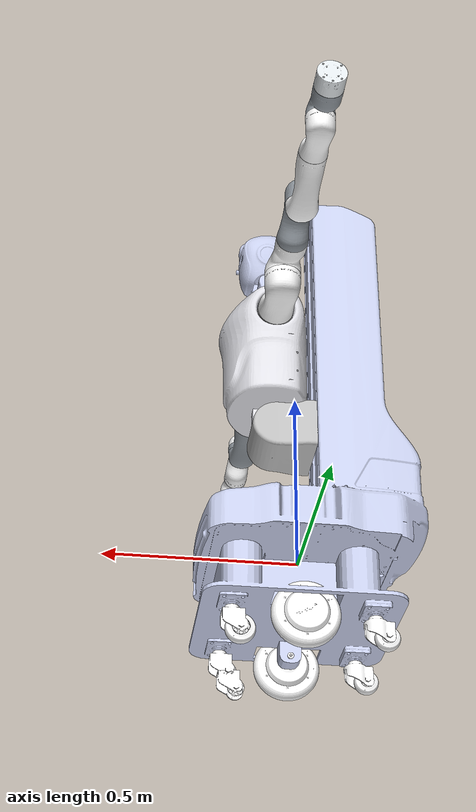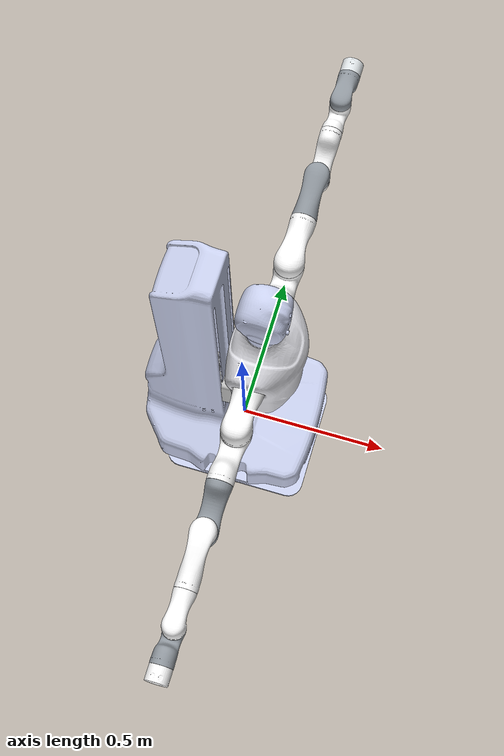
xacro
<?xml version="1.0"?>
<robot xmlns:xacro="http://www.ros.org/wiki/xacro" name="fujqr04_urdf">
    <xacro:arg name="initial_positions_file" default="initial_positions.yaml" />

    <!-- Import fujqr04_urdf urdf file -->
    <xacro:include filename="$(find tl_robot_description)/urdf/fujqr04_urdf.urdf" />

    <!-- Import control_xacro -->
    <xacro:include filename="fujqr04_urdf.ros2_control.xacro" />

    <xacro:fujqr04_urdf_ros2_control name="TLHardware" initial_positions_file="$(arg initial_positions_file)"/>

</robot>

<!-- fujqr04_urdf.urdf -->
<robot
  name="fujqr04_urdf">
      <mujoco>
    <compiler meshdir="package://tl_robot_description/meshes/composite_robot" discardvisual="false"/>
  </mujoco>
  <link
    name="base_link">
    <inertial>
      <origin
        xyz="-0.0585192454024194 -1.67637819496746E-05 0.151552337128435"
        rpy="0 0 0" />
      <mass
        value="26.647418791939" />
      <inertia
        ixx="0.595861553229968"
        ixy="-5.87175946958511E-05"
        ixz="0.00375746939189131"
        iyy="0.608863591294001"
        iyz="-1.57939781044652E-05"
        izz="0.501908866217119" />
    </inertial>
    <visual>
      <origin
        xyz="0 0 0"
        rpy="0 0 0" />
      <geometry>
        <mesh
          filename="package://tl_robot_description/meshes/composite_robot/base_link.STL" />
      </geometry>
      <material
        name="">
        <color
          rgba="0.792156862745098 0.819607843137255 0.933333333333333 1" />
      </material>
    </visual>
    <collision>
      <origin
        xyz="0 0 0"
        rpy="0 0 0" />
      <geometry>
        <mesh
          filename="package://tl_robot_description/meshes/composite_robot/base_link.STL" />
      </geometry>
    </collision>
  </link>
  <link
    name="right_wheel_link">
    <inertial>
      <origin
        xyz="-0.000904107370642615 0.000627773631885153 -0.00018469891110226"
        rpy="0 0 0" />
      <mass
        value="0.906065331403416" />
      <inertia
        ixx="0.00146490832006865"
        ixy="-2.68932350553715E-09"
        ixz="2.66391539023402E-08"
        iyy="0.00274396801108794"
        iyz="-2.65212662986043E-07"
        izz="0.00146498413434211" />
    </inertial>
    <visual>
      <origin
        xyz="0 0 0"
        rpy="0 0 0" />
      <geometry>
        <mesh
          filename="package://tl_robot_description/meshes/composite_robot/right_wheel_link.STL" />
      </geometry>
      <material
        name="">
        <color
          rgba="1 1 1 1" />
      </material>
    </visual>
    <collision>
      <origin
        xyz="0 0 0"
        rpy="0 0 0" />
      <geometry>
        <mesh
          filename="package://tl_robot_description/meshes/composite_robot/right_wheel_link.STL" />
      </geometry>
    </collision>
  </link>
  <joint
    name="right_wheel_joint"
    type="fixed">
    <origin
      xyz="0.00924308221084946 -0.163664282793204 -0.213500858738017"
      rpy="0 0 0" />
    <parent
      link="base_link" />
    <child
      link="right_wheel_link" />
    <axis
      xyz="0 1 0" />
  </joint>
  <link
    name="left_wheel_link">
    <inertial>
      <origin
        xyz="-1.23989030601512E-05 -0.000627774706009075 4.48483952431022E-06"
        rpy="0 0 0" />
      <mass
        value="0.906065281118617" />
      <inertia
        ixx="0.00146490692546974"
        ixy="4.36963444339904E-09"
        ixz="-2.46401910031467E-08"
        iyy="0.00274396788517508"
        iyz="2.65187799226424E-07"
        izz="0.00146498540258475" />
    </inertial>
    <visual>
      <origin
        xyz="0 0 0"
        rpy="0 0 0" />
      <geometry>
        <mesh
          filename="package://tl_robot_description/meshes/composite_robot/left_wheel_link.STL" />
      </geometry>
      <material
        name="">
        <color
          rgba="1 1 1 1" />
      </material>
    </visual>
    <collision>
      <origin
        xyz="0 0 0"
        rpy="0 0 0" />
      <geometry>
        <mesh
          filename="package://tl_robot_description/meshes/composite_robot/left_wheel_link.STL" />
      </geometry>
    </collision>
  </link>
  <joint
    name="left_wheel_joint"
    type="fixed">
    <origin
      xyz="0.00924308221084946 0.163635717206786 -0.213500858738017"
      rpy="0 0 0" />
    <parent
      link="base_link" />
    <child
      link="left_wheel_link" />
    <axis
      xyz="0 -1 0" />
  </joint>
  <link
    name="r_wheel1_link">
    <inertial>
      <origin
        xyz="-0.0113137247197726 -0.000218433447863375 -0.0261993099863237"
        rpy="0 0 0" />
      <mass
        value="0.0428499821293494" />
      <inertia
        ixx="1.52834000745033E-05"
        ixy="-3.4950707316608E-09"
        ixz="-1.01718859528849E-06"
        iyy="1.23944108861041E-05"
        iyz="7.98827275350381E-11"
        izz="1.58388917660375E-05" />
    </inertial>
    <visual>
      <origin
        xyz="0 0 0"
        rpy="0 0 0" />
      <geometry>
        <mesh
          filename="package://tl_robot_description/meshes/composite_robot/r_wheel1_link.STL" />
      </geometry>
      <material
        name="">
        <color
          rgba="1 1 1 1" />
      </material>
    </visual>
    <collision>
      <origin
        xyz="0 0 0"
        rpy="0 0 0" />
      <geometry>
        <mesh
          filename="package://tl_robot_description/meshes/composite_robot/r_wheel1_link.STL" />
      </geometry>
    </collision>
  </link>
  <joint
    name="r_wheel1_joint"
    type="fixed">
    <origin
      xyz="0.183794709280946 -0.135014282793186 -0.203549999999998"
      rpy="0 0 0" />
    <parent
      link="base_link" />
    <child
      link="r_wheel1_link" />
    <axis
      xyz="0 0 1" />
    <limit
      lower="-3.14"
      upper="3.14"
      effort="10"
      velocity="10" />
  </joint>
  <link
    name="right_wheel1_link">
    <inertial>
      <origin
        xyz="7.80906843078633E-07 4.3178541853095E-09 -2.0320507282956E-06"
        rpy="0 0 0" />
      <mass
        value="0.110487149626156" />
      <inertia
        ixx="4.38934678556913E-05"
        ixy="-4.47028176514792E-11"
        ixz="1.13193512494371E-08"
        iyy="7.47299398015464E-05"
        iyz="-4.56497658987084E-11"
        izz="4.38712937378626E-05" />
    </inertial>
    <visual>
      <origin
        xyz="0 0 0"
        rpy="0 0 0" />
      <geometry>
        <mesh
          filename="package://tl_robot_description/meshes/composite_robot/right_wheel1_link.STL" />
      </geometry>
      <material
        name="">
        <color
          rgba="1 1 1 1" />
      </material>
    </visual>
    <collision>
      <origin
        xyz="0 0 0"
        rpy="0 0 0" />
      <geometry>
        <mesh
          filename="package://tl_robot_description/meshes/composite_robot/right_wheel1_link.STL" />
      </geometry>
    </collision>
  </link>
  <joint
    name="right_wheel1_joint"
    type="fixed">
    <origin
      xyz="-0.0205 0 -0.0432"
      rpy="0 0 0" />
    <parent
      link="r_wheel1_link" />
    <child
      link="right_wheel1_link" />
    <axis
      xyz="0 -1 0" />
  </joint>
  <link
    name="r_wheel2_link">
    <inertial>
      <origin
        xyz="-0.014027793887006 -0.000231594026883664 -0.0222607688915356"
        rpy="0 0 0" />
      <mass
        value="0.0459567939136361" />
      <inertia
        ixx="1.95859406220218E-05"
        ixy="8.47128518178421E-09"
        ixz="-1.86482178866713E-06"
        iyy="1.6680216642778E-05"
        iyz="2.39089350752865E-09"
        izz="2.32978369433128E-05" />
    </inertial>
    <visual>
      <origin
        xyz="0 0 0"
        rpy="0 0 0" />
      <geometry>
        <mesh
          filename="package://tl_robot_description/meshes/composite_robot/r_wheel2_link.STL" />
      </geometry>
      <material
        name="">
        <color
          rgba="1 1 1 1" />
      </material>
    </visual>
    <collision>
      <origin
        xyz="0 0 0"
        rpy="0 0 0" />
      <geometry>
        <mesh
          filename="package://tl_robot_description/meshes/composite_robot/r_wheel2_link.STL" />
      </geometry>
    </collision>
  </link>
  <joint
    name="r_wheel2_joint"
    type="fixed">
    <origin
      xyz="-0.166205254244258 -0.135013949211622 -0.213250000000002"
      rpy="0 0 0" />
    <parent
      link="base_link" />
    <child
      link="r_wheel2_link" />
    <axis
      xyz="0 0 1" />
    <limit
      lower="-3.14"
      upper="3.14"
      effort="10"
      velocity="10" />
  </joint>
  <link
    name="right_wheel2_link">
    <inertial>
      <origin
        xyz="-1.20284292748352E-07 7.29827309697839E-12 2.90073505299082E-07"
        rpy="0 0 0" />
      <mass
        value="0.0867602671682201" />
      <inertia
        ixx="2.5469835297065E-05"
        ixy="1.42130721310809E-10"
        ixz="7.40808742693022E-09"
        iyy="3.80488317798568E-05"
        iyz="5.89476737928406E-11"
        izz="2.54550425639356E-05" />
    </inertial>
    <visual>
      <origin
        xyz="0 0 0"
        rpy="0 0 0" />
      <geometry>
        <mesh
          filename="package://tl_robot_description/meshes/composite_robot/right_wheel2_link.STL" />
      </geometry>
      <material
        name="">
        <color
          rgba="1 1 1 1" />
      </material>
    </visual>
    <collision>
      <origin
        xyz="0 0 0"
        rpy="0 0 0" />
      <geometry>
        <mesh
          filename="package://tl_robot_description/meshes/composite_robot/right_wheel2_link.STL" />
      </geometry>
    </collision>
  </link>
  <joint
    name="right_wheel2_joint"
    type="fixed">
    <origin
      xyz="-0.0265 0 -0.0395"
      rpy="0 0.00129839823615998 0" />
    <parent
      link="r_wheel2_link" />
    <child
      link="right_wheel2_link" />
    <axis
      xyz="0 -1 0" />
  </joint>
  <link
    name="l_wheel1_link">
    <inertial>
      <origin
        xyz="-0.0113137249835045 -0.000218433396062562 -0.0261993098242906"
        rpy="0 0 0" />
      <mass
        value="0.0428499824901452" />
      <inertia
        ixx="1.52834000799942E-05"
        ixy="-3.49504906661967E-09"
        ixz="-1.01718864900662E-06"
        iyy="1.23944110236126E-05"
        iyz="7.98913017200971E-11"
        izz="1.5838891901709E-05" />
    </inertial>
    <visual>
      <origin
        xyz="0 0 0"
        rpy="0 0 0" />
      <geometry>
        <mesh
          filename="package://tl_robot_description/meshes/composite_robot/l_wheel1_link.STL" />
      </geometry>
      <material
        name="">
        <color
          rgba="1 1 1 1" />
      </material>
    </visual>
    <collision>
      <origin
        xyz="0 0 0"
        rpy="0 0 0" />
      <geometry>
        <mesh
          filename="package://tl_robot_description/meshes/composite_robot/l_wheel1_link.STL" />
      </geometry>
    </collision>
  </link>
  <joint
    name="l_wheel1_joint"
    type="fixed">
    <origin
      xyz="0.183794709280931 0.1349857172068 -0.203549999999998"
      rpy="0 0 0" />
    <parent
      link="base_link" />
    <child
      link="l_wheel1_link" />
    <axis
      xyz="0 0 1" />
    <limit
      lower="-3.14"
      upper="3.14"
      effort="10"
      velocity="10" />
  </joint>
  <link
    name="left_wheel1_link">
    <inertial>
      <origin
        xyz="7.80906836417294E-07 4.31786126298128E-09 -2.03205072363266E-06"
        rpy="0 0 0" />
      <mass
        value="0.11048714962617" />
      <inertia
        ixx="4.3893467855692E-05"
        ixy="-4.47028054565614E-11"
        ixz="1.13193512583468E-08"
        iyy="7.47299398015534E-05"
        iyz="-4.564979020841E-11"
        izz="4.38712937378724E-05" />
    </inertial>
    <visual>
      <origin
        xyz="0 0 0"
        rpy="0 0 0" />
      <geometry>
        <mesh
          filename="package://tl_robot_description/meshes/composite_robot/left_wheel1_link.STL" />
      </geometry>
      <material
        name="">
        <color
          rgba="1 1 1 1" />
      </material>
    </visual>
    <collision>
      <origin
        xyz="0 0 0"
        rpy="0 0 0" />
      <geometry>
        <mesh
          filename="package://tl_robot_description/meshes/composite_robot/left_wheel1_link.STL" />
      </geometry>
    </collision>
  </link>
  <joint
    name="left_wheel1_joint"
    type="fixed">
    <origin
      xyz="-0.0205 0 -0.0432"
      rpy="0 0 0" />
    <parent
      link="l_wheel1_link" />
    <child
      link="left_wheel1_link" />
    <axis
      xyz="0 -1 0" />
  </joint>
  <link
    name="l_wheel2_link">
    <inertial>
      <origin
        xyz="-0.0140277943962059 -0.000231594175131911 -0.0222607696617747"
        rpy="0 0 0" />
      <mass
        value="0.0459567928027875" />
      <inertia
        ixx="1.95859408341884E-05"
        ixy="8.47139771002924E-09"
        ixz="-1.86482176681896E-06"
        iyy="1.66799725155158E-05"
        iyz="2.39079659159164E-09"
        izz="2.32975929149454E-05" />
    </inertial>
    <visual>
      <origin
        xyz="0 0 0"
        rpy="0 0 0" />
      <geometry>
        <mesh
          filename="package://tl_robot_description/meshes/composite_robot/l_wheel2_link.STL" />
      </geometry>
      <material
        name="">
        <color
          rgba="1 1 1 1" />
      </material>
    </visual>
    <collision>
      <origin
        xyz="0 0 0"
        rpy="0 0 0" />
      <geometry>
        <mesh
          filename="package://tl_robot_description/meshes/composite_robot/l_wheel2_link.STL" />
      </geometry>
    </collision>
  </link>
  <joint
    name="l_wheel2_joint"
    type="fixed">
    <origin
      xyz="-0.16620529071915 0.134985717206844 -0.213250000000002"
      rpy="0 0 0" />
    <parent
      link="base_link" />
    <child
      link="l_wheel2_link" />
    <axis
      xyz="0 0 1" />
    <limit
      lower="-3.14"
      upper="3.14"
      effort="10"
      velocity="10" />
  </joint>
  <link
    name="left_wheel2_link">
    <inertial>
      <origin
        xyz="-1.20284182059116E-07 7.40127403808799E-12 2.90073330549978E-07"
        rpy="0 0 0" />
      <mass
        value="0.086760267169114" />
      <inertia
        ixx="2.54698352974173E-05"
        ixy="1.42130617032467E-10"
        ixz="7.40808758172731E-09"
        iyy="3.80488317802008E-05"
        iyz="5.89478356885049E-11"
        izz="2.54550425641342E-05" />
    </inertial>
    <visual>
      <origin
        xyz="0 0 0"
        rpy="0 0 0" />
      <geometry>
        <mesh
          filename="package://tl_robot_description/meshes/composite_robot/left_wheel2_link.STL" />
      </geometry>
      <material
        name="">
        <color
          rgba="1 1 1 1" />
      </material>
    </visual>
    <collision>
      <origin
        xyz="0 0 0"
        rpy="0 0 0" />
      <geometry>
        <mesh
          filename="package://tl_robot_description/meshes/composite_robot/left_wheel2_link.STL" />
      </geometry>
    </collision>
  </link>
  <joint
    name="left_wheel2_joint"
    type="fixed">
    <origin
      xyz="-0.0265 0 -0.0395"
      rpy="0 0.00129839823615998 0" />
    <parent
      link="l_wheel2_link" />
    <child
      link="left_wheel2_link" />
    <axis
      xyz="0 -1 0" />
  </joint>
  <link
    name="torso_lift_link">
    <inertial>
      <origin
        xyz="0.0409090311775983 -0.000698260159682246 -0.0258765557154715"
        rpy="0 0 0" />
      <mass
        value="6.3762771278756" />
      <inertia
        ixx="0.012263357497778"
        ixy="2.00688147950621E-05"
        ixz="0.000151532355542095"
        iyy="0.0106756003458638"
        iyz="-1.14751453206824E-06"
        izz="0.0121203657273915" />
    </inertial>
    <visual>
      <origin
        xyz="0 0 0"
        rpy="0 0 0" />
      <geometry>
        <mesh
          filename="package://tl_robot_description/meshes/composite_robot/torso_lift_link.STL" />
      </geometry>
      <material
        name="">
        <color
          rgba="0.752941176470588 0.752941176470588 0.752941176470588 1" />
      </material>
    </visual>
    <collision>
      <origin
        xyz="0 0 0"
        rpy="0 0 0" />
      <geometry>
        <mesh
          filename="package://tl_robot_description/meshes/composite_robot/torso_lift_link.STL" />
      </geometry>
    </collision>
  </link>
  <joint
    name="torso_lift_joint"
    type="fixed">
    <origin
      xyz="-0.106875442291216 -1.42828144376606E-05 0.417130280560492"
      rpy="0 0 0" />
    <parent
      link="base_link" />
    <child
      link="torso_lift_link" />
    <axis
      xyz="0 0 1" />
    <limit
      lower="-0.1"
      upper="0.6"
      effort="0"
      velocity="0" />
  </joint>
  <link
    name="body_link">
    <inertial>
      <origin
        xyz="0.0117686385303164 -0.00077485019077872 0.188689891466574"
        rpy="0 0 0" />
      <mass
        value="5.0880715856155" />
      <inertia
        ixx="0.0310576585146269"
        ixy="-6.40426236252368E-05"
        ixz="-0.000293448162445969"
        iyy="0.026864645536454"
        iyz="-6.32957075559917E-05"
        izz="0.0195650398453874" />
    </inertial>
    <visual>
      <origin
        xyz="0 0 0"
        rpy="0 0 0" />
      <geometry>
        <mesh
          filename="package://tl_robot_description/meshes/composite_robot/body_link.STL" />
      </geometry>
      <material
        name="">
        <color
          rgba="0.890196078431372 0.890196078431372 0.913725490196078 1" />
      </material>
    </visual>
    <collision>
      <origin
        xyz="0 0 0"
        rpy="0 0 0" />
      <geometry>
        <mesh
          filename="package://tl_robot_description/meshes/composite_robot/body_link.STL" />
      </geometry>
    </collision>
  </link>
  <joint
    name="body_joint"
    type="fixed">
    <origin
      xyz="0.162500000024063 0 -0.0359999999987211"
      rpy="0 0 0" />
    <parent
      link="torso_lift_link" />
    <child
      link="body_link" />
    <axis
      xyz="0 1 0" />
    <limit
      lower="0"
      upper="0.61"
      effort="0"
      velocity="0" />
  </joint>
  <link
    name="right_tl_robot_link0">
    <inertial>
      <origin
        xyz="0.00192374644250437 -6.92485170161738E-06 0.0385486940392312"
        rpy="0 0 0" />
      <mass
        value="0.716845535665842" />
      <inertia
        ixx="0.00154416101417334"
        ixy="-1.11621426436659E-08"
        ixz="4.19538312749632E-05"
        iyy="0.00141876540736504"
        iyz="8.77246464212948E-10"
        izz="0.00181390795283312" />
    </inertial>
    <visual>
      <origin
        xyz="0 0 0"
        rpy="0 0 0" />
      <geometry>
        <mesh
          filename="package://tl_robot_description/meshes/composite_robot/right_tl_robot_link0.STL" />
      </geometry>
      <material
        name="">
        <color
          rgba="1 1 1 1" />
      </material>
    </visual>
    <collision>
      <origin
        xyz="0 0 0"
        rpy="0 0 0" />
      <geometry>
        <mesh
          filename="package://tl_robot_description/meshes/composite_robot/right_tl_robot_link0.STL" />
      </geometry>
    </collision>
  </link>
  <joint
    name="right_tl_robot_joint0"
    type="fixed">
    <origin
      xyz="0.0150727614410257 -0.0149999999654346 0.314999999998884"
      rpy="-1.57079632679446 0 -3.14159265358979" />
    <parent
      link="body_link" />
    <child
      link="right_tl_robot_link0" />
    <axis
      xyz="0 0 0" />
  </joint>
  <link
    name="right_tl_robot_link1">
    <inertial>
      <origin
        xyz="-6.06536260672197E-06 -0.0151213126560721 0.0704991532800994"
        rpy="0 0 0" />
      <mass
        value="0.518526718804213" />
      <inertia
        ixx="0.00167109666935009"
        ixy="1.57717042537927E-07"
        ixz="-1.53799170137836E-07"
        iyy="0.00175701058327343"
        iyz="0.000263609645526818"
        izz="0.000784474514309351" />
    </inertial>
    <visual>
      <origin
        xyz="0 0 0"
        rpy="0 0 0" />
      <geometry>
        <mesh
          filename="package://tl_robot_description/meshes/composite_robot/right_tl_robot_link1.STL" />
      </geometry>
      <material
        name="">
        <color
          rgba="1 1 1 1" />
      </material>
    </visual>
    <collision>
      <origin
        xyz="0 0 0"
        rpy="0 0 0" />
      <geometry>
        <mesh
          filename="package://tl_robot_description/meshes/composite_robot/right_tl_robot_link1.STL" />
      </geometry>
    </collision>
  </link>
  <joint
    name="right_tl_robot_joint1"
    type="revolute">
    <origin
      xyz="-0.000927238572212885 0 0.131499999999995"
      rpy="0 0 0" />
    <parent
      link="right_tl_robot_link0" />
    <child
      link="right_tl_robot_link1" />
    <axis
      xyz="0 0 1" />
    <limit
      lower="-3.14"
      upper="3.14"
      effort="10"
      velocity="10" />
  </joint>
  <link
    name="right_tl_robot_link2">
    <inertial>
      <origin
        xyz="-1.26960580512647E-05 -0.0664217640319343 0.0045783349860955"
        rpy="0 0 0" />
      <mass
        value="0.458838702372525" />
      <inertia
        ixx="0.00164318340226464"
        ixy="-2.72687121461086E-07"
        ixz="-7.69957161933476E-08"
        iyy="0.000558837881514008"
        iyz="-0.000282993845642125"
        izz="0.00171225909772861" />
    </inertial>
    <visual>
      <origin
        xyz="0 0 0"
        rpy="0 0 0" />
      <geometry>
        <mesh
          filename="package://tl_robot_description/meshes/composite_robot/right_tl_robot_link2.STL" />
      </geometry>
      <material
        name="">
        <color
          rgba="1 1 1 1" />
      </material>
    </visual>
    <collision>
      <origin
        xyz="0 0 0"
        rpy="0 0 0" />
      <geometry>
        <mesh
          filename="package://tl_robot_description/meshes/composite_robot/right_tl_robot_link2.STL" />
      </geometry>
    </collision>
  </link>
  <joint
    name="right_tl_robot_joint2"
    type="revolute">
    <origin
      xyz="0 0.0159999999988272 0.131500000000007"
      rpy="-1.57079632679444 0 0" />
    <parent
      link="right_tl_robot_link1" />
    <child
      link="right_tl_robot_link2" />
    <axis
      xyz="0 0 1" />
    <limit
      lower="-2.35619449"
      upper="2.35619449"
      effort="10"
      velocity="10" />
  </joint>
  <link
    name="right_tl_robot_link3">
    <inertial>
      <origin
        xyz="5.33178425365932E-06 0.0166055350939187 0.0826903765904404"
        rpy="0 0 0" />
      <mass
        value="0.463627232587183" />
      <inertia
        ixx="0.00162345325371039"
        ixy="-7.0877843623357E-08"
        ixz="-2.65531657543152E-07"
        iyy="0.00168226141881407"
        iyz="-0.000238494599529547"
        izz="0.000463821892824167" />
    </inertial>
    <visual>
      <origin
        xyz="0 0 0"
        rpy="0 0 0" />
      <geometry>
        <mesh
          filename="package://tl_robot_description/meshes/composite_robot/right_tl_robot_link3.STL" />
      </geometry>
      <material
        name="">
        <color
          rgba="0.568627450980392 0.596078431372549 0.623529411764706 1" />
      </material>
    </visual>
    <collision>
      <origin
        xyz="0 0 0"
        rpy="0 0 0" />
      <geometry>
        <mesh
          filename="package://tl_robot_description/meshes/composite_robot/right_tl_robot_link3.STL" />
      </geometry>
    </collision>
  </link>
  <joint
    name="right_tl_robot_joint3"
    type="revolute">
    <origin
      xyz="0 -0.167500000000009 -0.0159999999999649"
      rpy="1.57079632679491 0 0" />
    <parent
      link="right_tl_robot_link2" />
    <child
      link="right_tl_robot_link3" />
    <axis
      xyz="0 0 1" />
    <limit
      lower="-3.14"
      upper="3.14"
      effort="10"
      velocity="10" />
  </joint>
  <link
    name="right_tl_robot_link4">
    <inertial>
      <origin
        xyz="2.76607595806055E-06 0.0694960785437674 0.00637378741975958"
        rpy="0 0 0" />
      <mass
        value="0.396498504487939" />
      <inertia
        ixx="0.0013749737283313"
        ixy="7.70357106087923E-08"
        ixz="2.54768454522589E-08"
        iyy="0.000357925344418066"
        iyz="0.00021175966786872"
        izz="0.00141757706980178" />
    </inertial>
    <visual>
      <origin
        xyz="0 0 0"
        rpy="0 0 0" />
      <geometry>
        <mesh
          filename="package://tl_robot_description/meshes/composite_robot/right_tl_robot_link4.STL" />
      </geometry>
      <material
        name="">
        <color
          rgba="1 1 1 1" />
      </material>
    </visual>
    <collision>
      <origin
        xyz="0 0 0"
        rpy="0 0 0" />
      <geometry>
        <mesh
          filename="package://tl_robot_description/meshes/composite_robot/right_tl_robot_link4.STL" />
      </geometry>
    </collision>
  </link>
  <joint
    name="right_tl_robot_joint4"
    type="revolute">
    <origin
      xyz="0 -0.013500000000213 0.153000000000002"
      rpy="1.57079632679489 0 0" />
    <parent
      link="right_tl_robot_link3" />
    <child
      link="right_tl_robot_link4" />
    <axis
      xyz="0 0 -1" />
    <limit
      lower="-2.35619449"
      upper="2.35619449"
      effort="10"
      velocity="10" />
  </joint>
  <link
    name="right_tl_robot_link5">
    <inertial>
      <origin
        xyz="-3.40926285069543E-06 -0.0133244789571756 0.0587132278005724"
        rpy="0 0 0" />
      <mass
        value="0.244288838305961" />
      <inertia
        ixx="0.000507361498650564"
        ixy="3.14090661307379E-08"
        ixz="-1.10052154309203E-07"
        iyy="0.000522024118241343"
        iyz="8.9412696191389E-05"
        izz="0.000202971055876174" />
    </inertial>
    <visual>
      <origin
        xyz="0 0 0"
        rpy="0 0 0" />
      <geometry>
        <mesh
          filename="package://tl_robot_description/meshes/composite_robot/right_tl_robot_link5.STL" />
      </geometry>
      <material
        name="">
        <color
          rgba="1 1 1 1" />
      </material>
    </visual>
    <collision>
      <origin
        xyz="0 0 0"
        rpy="0 0 0" />
      <geometry>
        <mesh
          filename="package://tl_robot_description/meshes/composite_robot/right_tl_robot_link5.STL" />
      </geometry>
    </collision>
  </link>
  <joint
    name="right_tl_robot_joint5"
    type="revolute">
    <origin
      xyz="0 0.17449999999996 -0.0135000000000172"
      rpy="-1.57079632679549 0 0" />
    <parent
      link="right_tl_robot_link4" />
    <child
      link="right_tl_robot_link5" />
    <axis
      xyz="0 0 1" />
    <limit
      lower="-3.14"
      upper="3.14"
      effort="10"
      velocity="10" />
  </joint>
  <link
    name="right_tl_robot_link6">
    <inertial>
      <origin
        xyz="-1.40320353185786E-05 -0.0434236898121723 0.000526798770660086"
        rpy="0 0 0" />
      <mass
        value="0.248665741580466" />
      <inertia
        ixx="0.000435366365641092"
        ixy="1.02578029044756E-07"
        ixz="3.83958961579293E-08"
        iyy="0.000223309836077594"
        iyz="-9.15144352365045E-05"
        izz="0.000440491062716011" />
    </inertial>
    <visual>
      <origin
        xyz="0 0 0"
        rpy="0 0 0" />
      <geometry>
        <mesh
          filename="package://tl_robot_description/meshes/composite_robot/right_tl_robot_link6.STL" />
      </geometry>
      <material
        name="">
        <color
          rgba="0.568627450980392 0.596078431372549 0.623529411764706 1" />
      </material>
    </visual>
    <collision>
      <origin
        xyz="0 0 0"
        rpy="0 0 0" />
      <geometry>
        <mesh
          filename="package://tl_robot_description/meshes/composite_robot/right_tl_robot_link6.STL" />
      </geometry>
    </collision>
  </link>
  <joint
    name="right_tl_robot_joint6"
    type="revolute">
    <origin
      xyz="0 0.0145000000018278 0.105000000000001"
      rpy="-1.57079632679431 0 0" />
    <parent
      link="right_tl_robot_link5" />
    <child
      link="right_tl_robot_link6" />
    <axis
      xyz="0 0 1" />
    <limit
      lower="-2.35619449"
      upper="2.35619449"
      effort="10"
      velocity="10" />
  </joint>
  <link
    name="right_tl_robot_link7">
    <inertial>
      <origin
        xyz="-4.26976566042514E-06 -9.34423822174235E-05 0.0269658756305569"
        rpy="0 0 0" />
      <mass
        value="0.217904444638026" />
      <inertia
        ixx="0.000132895370549979"
        ixy="-2.07531992122267E-08"
        ixz="9.78348685333675E-10"
        iyy="0.000131821662401355"
        iyz="6.36865291789532E-09"
        izz="0.000178910519063227" />
    </inertial>
    <visual>
      <origin
        xyz="0 0 0"
        rpy="0 0 0" />
      <geometry>
        <mesh
          filename="package://tl_robot_description/meshes/composite_robot/right_tl_robot_link7.STL" />
      </geometry>
      <material
        name="">
        <color
          rgba="1 1 1 1" />
      </material>
    </visual>
    <collision>
      <origin
        xyz="0 0 0"
        rpy="0 0 0" />
      <geometry>
        <mesh
          filename="package://tl_robot_description/meshes/composite_robot/right_tl_robot_link7.STL" />
      </geometry>
    </collision>
  </link>
  <joint
    name="right_tl_robot_joint7"
    type="revolute">
    <origin
      xyz="0 -0.114500000000033 -0.0144999999996767"
      rpy="1.57079632679452 0 0" />
    <parent
      link="right_tl_robot_link6" />
    <child
      link="right_tl_robot_link7" />
    <axis
      xyz="0 0 1" />
    <limit
      lower="-3.14"
      upper="3.14"
      effort="10"
      velocity="10" />
  </joint>
  <link
    name="left_tl_robot_link0">
    <inertial>
      <origin
        xyz="0.00192374642958909 -6.92485170095125E-06 0.0385486940394267"
        rpy="0 0 0" />
      <mass
        value="0.716845535665837" />
      <inertia
        ixx="0.00154416101417348"
        ixy="-1.11621436063746E-08"
        ixz="4.19538312750026E-05"
        iyy="0.0014187654073648"
        iyz="8.77246449852576E-10"
        izz="0.00181390795283298" />
    </inertial>
    <visual>
      <origin
        xyz="0 0 0"
        rpy="0 0 0" />
      <geometry>
        <mesh
          filename="package://tl_robot_description/meshes/composite_robot/left_tl_robot_link0.STL" />
      </geometry>
      <material
        name="">
        <color
          rgba="0.698039215686274 0.698039215686274 0.698039215686274 1" />
      </material>
    </visual>
    <collision>
      <origin
        xyz="0 0 0"
        rpy="0 0 0" />
      <geometry>
        <mesh
          filename="package://tl_robot_description/meshes/composite_robot/left_tl_robot_link0.STL" />
      </geometry>
    </collision>
  </link>
  <joint
    name="left_tl_robot_joint0"
    type="fixed">
    <origin
      xyz="0.0150727614277847 0.0149999999999999 0.315"
      rpy="1.5707963267949 0 3.14159265358979" />
    <parent
      link="body_link" />
    <child
      link="left_tl_robot_link0" />
    <axis
      xyz="0 0 0" />
  </joint>
  <link
    name="left_tl_robot_link1">
    <inertial>
      <origin
        xyz="-3.22744538816533E-06 -0.0151241394602863 0.0705018024712039"
        rpy="0 0 0" />
      <mass
        value="0.518479296797124" />
      <inertia
        ixx="0.00167109420268885"
        ixy="1.55942416759266E-07"
        ixz="-1.54779125210919E-07"
        iyy="0.0017570055786797"
        iyz="0.000263610612968579"
        izz="0.000784478984496201" />
    </inertial>
    <visual>
      <origin
        xyz="0 0 0"
        rpy="0 0 0" />
      <geometry>
        <mesh
          filename="package://tl_robot_description/meshes/composite_robot/left_tl_robot_link1.STL" />
      </geometry>
      <material
        name="">
        <color
          rgba="1 1 1 1" />
      </material>
    </visual>
    <collision>
      <origin
        xyz="0 0 0"
        rpy="0 0 0" />
      <geometry>
        <mesh
          filename="package://tl_robot_description/meshes/composite_robot/left_tl_robot_link1.STL" />
      </geometry>
    </collision>
  </link>
  <joint
    name="left_tl_robot_joint1"
    type="revolute">
    <origin
      xyz="-0.000927238572212885 0 0.131499999999994"
      rpy="0 0 0" />
    <parent
      link="left_tl_robot_link0" />
    <child
      link="left_tl_robot_link1" />
    <axis
      xyz="0 0 1" />
    <limit
      lower="-3.14"
      upper="3.14"
      effort="10"
      velocity="10" />
  </joint>
  <link
    name="left_tl_robot_link2">
    <inertial>
      <origin
        xyz="-1.26981341808108E-05 -0.0664217615872392 0.00457834248595579"
        rpy="0 0 0" />
      <mass
        value="0.458838559078682" />
      <inertia
        ixx="0.00164318333342256"
        ixy="-2.72673631358784E-07"
        ixz="-7.69567017167403E-08"
        iyy="0.000558837975084229"
        iyz="-0.000282993807946962"
        izz="0.00171225917790595" />
    </inertial>
    <visual>
      <origin
        xyz="0 0 0"
        rpy="0 0 0" />
      <geometry>
        <mesh
          filename="package://tl_robot_description/meshes/composite_robot/left_tl_robot_link2.STL" />
      </geometry>
      <material
        name="">
        <color
          rgba="1 1 1 1" />
      </material>
    </visual>
    <collision>
      <origin
        xyz="0 0 0"
        rpy="0 0 0" />
      <geometry>
        <mesh
          filename="package://tl_robot_description/meshes/composite_robot/left_tl_robot_link2.STL" />
      </geometry>
    </collision>
  </link>
  <joint
    name="left_tl_robot_joint2"
    type="revolute">
    <origin
      xyz="0 0.0159999999988854 0.1315"
      rpy="-1.57079632679488 0 0" />
    <parent
      link="left_tl_robot_link1" />
    <child
      link="left_tl_robot_link2" />
    <axis
      xyz="0 0 1" />
    <limit
      lower="-2.35619449"
      upper="2.35619449"
      effort="10"
      velocity="10" />
  </joint>
  <link
    name="left_tl_robot_link3">
    <inertial>
      <origin
        xyz="5.34525665640828E-06 0.0166055217931906 0.0826903501113631"
        rpy="0 0 0" />
      <mass
        value="0.463626862441133" />
      <inertia
        ixx="0.00162345280531544"
        ixy="-7.09990185599955E-08"
        ixz="-2.65595087142102E-07"
        iyy="0.0016822612104723"
        iyz="-0.000238494378094532"
        izz="0.000463821764240809" />
    </inertial>
    <visual>
      <origin
        xyz="0 0 0"
        rpy="0 0 0" />
      <geometry>
        <mesh
          filename="package://tl_robot_description/meshes/composite_robot/left_tl_robot_link3.STL" />
      </geometry>
      <material
        name="">
        <color
          rgba="0.568627450980392 0.596078431372549 0.623529411764706 1" />
      </material>
    </visual>
    <collision>
      <origin
        xyz="0 0 0"
        rpy="0 0 0" />
      <geometry>
        <mesh
          filename="package://tl_robot_description/meshes/composite_robot/left_tl_robot_link3.STL" />
      </geometry>
    </collision>
  </link>
  <joint
    name="left_tl_robot_joint3"
    type="revolute">
    <origin
      xyz="0 -0.167500000000009 -0.0159999999998925"
      rpy="1.57079632679491 0 0" />
    <parent
      link="left_tl_robot_link2" />
    <child
      link="left_tl_robot_link3" />
    <axis
      xyz="0 0 1" />
    <limit
      lower="-3.14"
      upper="3.14"
      effort="10"
      velocity="10" />
  </joint>
  <link
    name="left_tl_robot_link4">
    <inertial>
      <origin
        xyz="2.77499371681422E-06 0.0694960701165344 0.00637378176105474"
        rpy="0 0 0" />
      <mass
        value="0.396498467935782" />
      <inertia
        ixx="0.00137497369985905"
        ixy="7.70456070168299E-08"
        ixz="2.53782058959786E-08"
        iyy="0.000357925307856412"
        iyz="0.000211759729780307"
        izz="0.00141757709378062" />
    </inertial>
    <visual>
      <origin
        xyz="0 0 0"
        rpy="0 0 0" />
      <geometry>
        <mesh
          filename="package://tl_robot_description/meshes/composite_robot/left_tl_robot_link4.STL" />
      </geometry>
      <material
        name="">
        <color
          rgba="1 1 1 1" />
      </material>
    </visual>
    <collision>
      <origin
        xyz="0 0 0"
        rpy="0 0 0" />
      <geometry>
        <mesh
          filename="package://tl_robot_description/meshes/composite_robot/left_tl_robot_link4.STL" />
      </geometry>
    </collision>
  </link>
  <joint
    name="left_tl_robot_joint4"
    type="revolute">
    <origin
      xyz="0 -0.0135000000002568 0.153000000000002"
      rpy="1.57079632679489 0 0" />
    <parent
      link="left_tl_robot_link3" />
    <child
      link="left_tl_robot_link4" />
    <axis
      xyz="0 0 -1" />
    <limit
      lower="-2.35619449"
      upper="2.35619449"
      effort="10"
      velocity="10" />
  </joint>
  <link
    name="left_tl_robot_link5">
    <inertial>
      <origin
        xyz="-3.40933788461895E-06 -0.0133244789122331 0.0587132278154021"
        rpy="0 0 0" />
      <mass
        value="0.244288838250713" />
      <inertia
        ixx="0.000507361499420868"
        ixy="3.14094198346696E-08"
        ixz="-1.10052698007247E-07"
        iyy="0.000522024117410588"
        iyz="8.94126964824741E-05"
        izz="0.000202971056177867" />
    </inertial>
    <visual>
      <origin
        xyz="0 0 0"
        rpy="0 0 0" />
      <geometry>
        <mesh
          filename="package://tl_robot_description/meshes/composite_robot/left_tl_robot_link5.STL" />
      </geometry>
      <material
        name="">
        <color
          rgba="1 1 1 1" />
      </material>
    </visual>
    <collision>
      <origin
        xyz="0 0 0"
        rpy="0 0 0" />
      <geometry>
        <mesh
          filename="package://tl_robot_description/meshes/composite_robot/left_tl_robot_link5.STL" />
      </geometry>
    </collision>
  </link>
  <joint
    name="left_tl_robot_joint5"
    type="revolute">
    <origin
      xyz="0 0.174499999999963 -0.0135000000000027"
      rpy="-1.57079632679493 0 0" />
    <parent
      link="left_tl_robot_link4" />
    <child
      link="left_tl_robot_link5" />
    <axis
      xyz="0 0 1" />
    <limit
      lower="-3.14"
      upper="3.14"
      effort="10"
      velocity="10" />
  </joint>
  <link
    name="left_tl_robot_link6">
    <inertial>
      <origin
        xyz="-1.40320481823997E-05 -0.0434236898124801 0.000526798770638548"
        rpy="0 0 0" />
      <mass
        value="0.248665741580508" />
      <inertia
        ixx="0.000435366365641065"
        ixy="1.02578029235109E-07"
        ixz="3.83958962041588E-08"
        iyy="0.000223309836077521"
        iyz="-9.15144352364949E-05"
        izz="0.000440491062716001" />
    </inertial>
    <visual>
      <origin
        xyz="0 0 0"
        rpy="0 0 0" />
      <geometry>
        <mesh
          filename="package://tl_robot_description/meshes/composite_robot/left_tl_robot_link6.STL" />
      </geometry>
      <material
        name="">
        <color
          rgba="0.568627450980392 0.596078431372549 0.623529411764706 1" />
      </material>
    </visual>
    <collision>
      <origin
        xyz="0 0 0"
        rpy="0 0 0" />
      <geometry>
        <mesh
          filename="package://tl_robot_description/meshes/composite_robot/left_tl_robot_link6.STL" />
      </geometry>
    </collision>
  </link>
  <joint
    name="left_tl_robot_joint6"
    type="revolute">
    <origin
      xyz="0 0.0145000000019011 0.10499999999999"
      rpy="-1.57079632679487 0 0" />
    <parent
      link="left_tl_robot_link5" />
    <child
      link="left_tl_robot_link6" />
    <axis
      xyz="0 0 1" />
    <limit
      lower="-2.35619449"
      upper="2.35619449"
      effort="10"
      velocity="10" />
  </joint>
  <link
    name="left_tl_robot_link7">
    <inertial>
      <origin
        xyz="-4.26977886364144E-06 -9.34423823821806E-05 0.0269658756305334"
        rpy="0 0 0" />
      <mass
        value="0.217904444638026" />
      <inertia
        ixx="0.000132895370549978"
        ixy="-2.07531992122101E-08"
        ixz="9.78348685470837E-10"
        iyy="0.000131821662401355"
        iyz="6.36865291789679E-09"
        izz="0.000178910519063226" />
    </inertial>
    <visual>
      <origin
        xyz="0 0 0"
        rpy="0 0 0" />
      <geometry>
        <mesh
          filename="package://tl_robot_description/meshes/composite_robot/left_tl_robot_link7.STL" />
      </geometry>
      <material
        name="">
        <color
          rgba="0.898039215686275 0.917647058823529 0.929411764705882 1" />
      </material>
    </visual>
    <collision>
      <origin
        xyz="0 0 0"
        rpy="0 0 0" />
      <geometry>
        <mesh
          filename="package://tl_robot_description/meshes/composite_robot/left_tl_robot_link7.STL" />
      </geometry>
    </collision>
  </link>
  <joint
    name="left_tl_robot_joint7"
    type="revolute">
    <origin
      xyz="0 -0.114500000000057 -0.0144999999995405"
      rpy="1.57079632679452 0 0" />
    <parent
      link="left_tl_robot_link6" />
    <child
      link="left_tl_robot_link7" />
    <axis
      xyz="0 0 1" />
    <limit
      lower="-3.14"
      upper="3.14"
      effort="10"
      velocity="10" />
  </joint>
  <link
    name="head1_link">
    <inertial>
      <origin
        xyz="-0.000110544612671848 0.0119119243556335 0.0301067925619751"
        rpy="0 0 0" />
      <mass
        value="0.23999397328408" />
      <inertia
        ixx="0.000200766393248412"
        ixy="9.97354686190349E-07"
        ixz="2.25888413561379E-07"
        iyy="0.000123810810769138"
        iyz="3.04843733388385E-06"
        izz="0.000173354729953966" />
    </inertial>
    <visual>
      <origin
        xyz="0 0 0"
        rpy="0 0 0" />
      <geometry>
        <mesh
          filename="package://tl_robot_description/meshes/composite_robot/head1_link.STL" />
      </geometry>
      <material
        name="">
        <color
          rgba="0.792156862745098 0.819607843137255 0.933333333333333 1" />
      </material>
    </visual>
    <collision>
      <origin
        xyz="0 0 0"
        rpy="0 0 0" />
      <geometry>
        <mesh
          filename="package://tl_robot_description/meshes/composite_robot/head1_link.STL" />
      </geometry>
    </collision>
  </link>
  <joint
    name="head1_joint"
    type="fixed">
    <origin
      xyz="0.0160000000000082 0 0.439000000001103"
      rpy="0 0 0" />
    <parent
      link="body_link" />
    <child
      link="head1_link" />
    <axis
      xyz="0 0 1" />
    <limit
      lower="-0.78"
      upper="0.78"
      effort="0"
      velocity="0" />
  </joint>
  <link
    name="head2_link">
    <inertial>
      <origin
        xyz="0.0154454796675373 -0.00213387553601474 0.0748127663343177"
        rpy="0 0 0" />
      <mass
        value="0.409174674371638" />
      <inertia
        ixx="0.00127698871749047"
        ixy="-3.18656524680306E-07"
        ixz="-1.12537422467823E-05"
        iyy="0.000725097130503655"
        iyz="-1.06044440489727E-07"
        izz="0.000946382031253248" />
    </inertial>
    <visual>
      <origin
        xyz="0 0 0"
        rpy="0 0 0" />
      <geometry>
        <mesh
          filename="package://tl_robot_description/meshes/composite_robot/head2_link.STL" />
      </geometry>
      <material
        name="">
        <color
          rgba="0.792156862745098 0.819607843137255 0.933333333333333 1" />
      </material>
    </visual>
    <collision>
      <origin
        xyz="0 0 0"
        rpy="0 0 0" />
      <geometry>
        <mesh
          filename="package://tl_robot_description/meshes/composite_robot/head2_link.STL" />
      </geometry>
    </collision>
  </link>
  <joint
    name="head2_joint"
    type="fixed">
    <origin
      xyz="-0.000309151773435268 0.0020018291209849 0.0474999999999999"
      rpy="0 0 -0.00580742002106411" />
    <parent
      link="head1_link" />
    <child
      link="head2_link" />
    <axis
      xyz="0 1 0" />
    <limit
      lower="-0.26"
      upper="0.43"
      effort="0"
      velocity="0" />
  </joint>
  <link
    name="head3_link">
    <inertial>
      <origin
        xyz="0.0115023494424462 -0.00298518828511368 -0.00106984495635642"
        rpy="0 0 0" />
      <mass
        value="0.0519216731169617" />
      <inertia
        ixx="4.03019084886521E-05"
        ixy="-1.19828295480724E-06"
        ixz="-4.50259990749629E-07"
        iyy="6.85285945251072E-06"
        iyz="-2.60437994636185E-06"
        izz="3.87787507032364E-05" />
    </inertial>
    <visual>
      <origin
        xyz="0 0 0"
        rpy="0 0 0" />
      <geometry>
        <mesh
          filename="package://tl_robot_description/meshes/composite_robot/head3_link.STL" />
      </geometry>
      <material
        name="">
        <color
          rgba="0.792156862745098 0.819607843137255 0.933333333333333 1" />
      </material>
    </visual>
    <collision>
      <origin
        xyz="0 0 0"
        rpy="0 0 0" />
      <geometry>
        <mesh
          filename="package://tl_robot_description/meshes/composite_robot/head3_link.STL" />
      </geometry>
    </collision>
  </link>
  <joint
    name="head3_joint"
    type="fixed">
    <origin
      xyz="0.0522292280426216 -0.00200000000003878 0.0863448703490786"
      rpy="0 0 0" />
    <parent
      link="head2_link" />
    <child
      link="head3_link" />
    <axis
      xyz="0 0 0" />
  </joint>
</robot>
